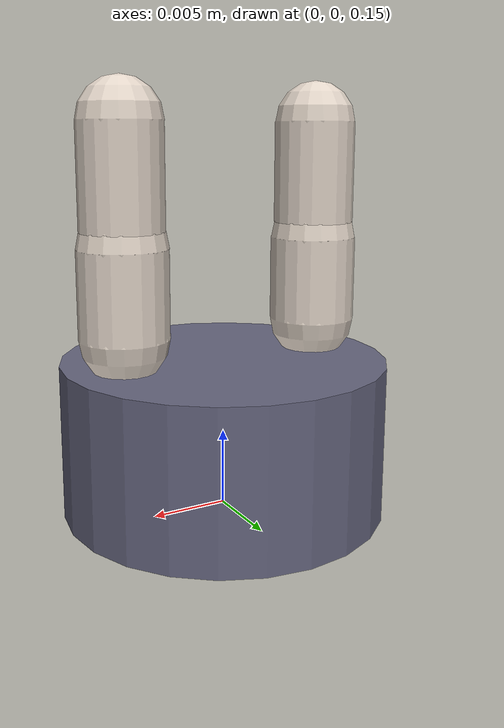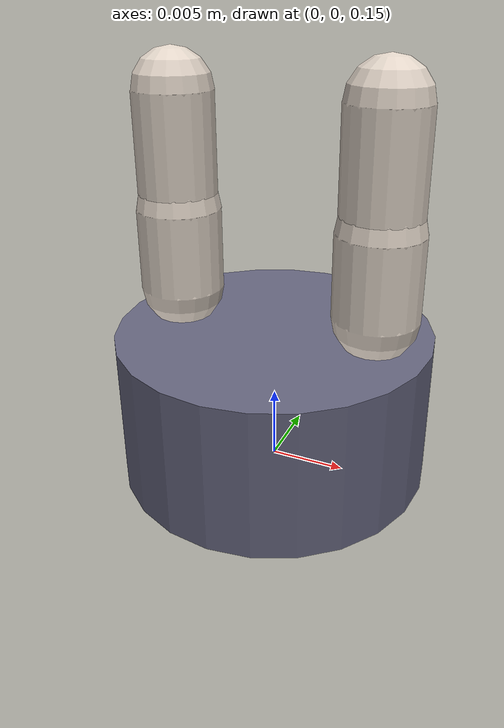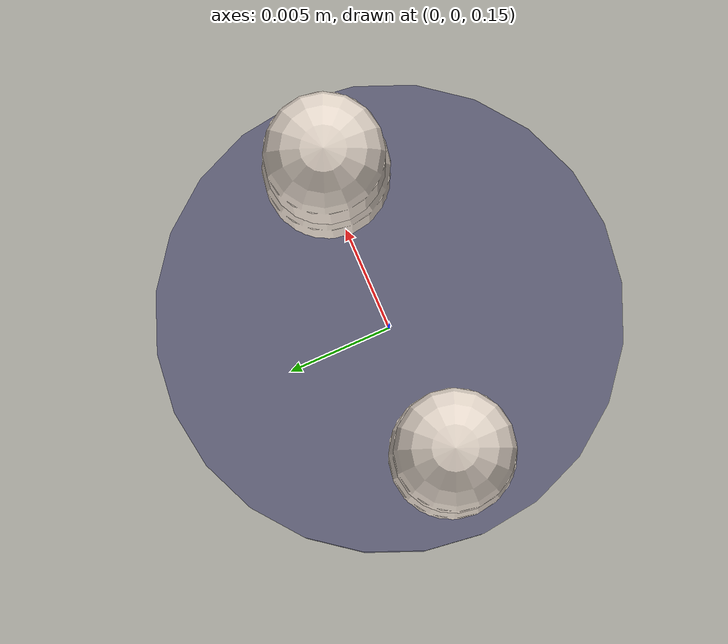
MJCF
<?xml version="1.0" encoding="utf-8"?>
<mujoco model="OF-20260129-0001">
  <compiler angle="radian" autolimits="true" meshdir="meshes"/>
  <option timestep="0.002" iterations="50" solver="Newton" tolerance="1e-10">
    <flag warmstart="enable"/>
  </option>
  <default>
    <default class="gripper">
      <geom type="capsule" condim="4" friction="0.8 0.005 0.0001" rgba="0.9 0.85 0.8 1" margin="0.001"/>
      <joint type="hinge" limited="true" range="-1.57 1.57" stiffness="0.02" damping="0.15" armature="0.001"/>
    </default>
    <default class="palm"><geom type="cylinder" rgba="0.4 0.4 0.5 1" friction="0.8 0.005 0.0001"/>
    </default>
  </default>
  <worldbody>
    <geom name="ground" type="plane" size="0.5 0.5 0.1" condim="3"/>
    <light pos="0 0 1.5" dir="0 0 -1" directional="true"/>
    <body name="palm" pos="0 0 0.15">
      <geom class="palm" name="palm_geom" size="0.0105 0.0050" pos="0 0 0.0050" />
      <body name="finger_0_base" pos="0.0068 0.0000 0.0100">
        <joint class="gripper" name="finger_0_base_joint" axis="0 1 0" stiffness="0.0200" damping="0.1500"/>
        <site name="finger_0_site_0" pos="0 0 0.002" size="0.002"/>
        <geom class="gripper" name="finger_0_seg_0" fromto="0 0 0.0020 0 0 0.0075" size="0.0028" />
        <body name="finger_0_seg_1" pos="0 0 0.0075">
          <joint class="gripper" name="finger_0_joint_1" axis="0 1 0" stiffness="0.0170" damping="0.1200"/>
          <geom class="gripper" name="finger_0_seg_1_geom" fromto="0 0 0.001 0 0 0.0075" size="0.0026" />
          <site name="finger_0_site_1" pos="0 0 0.0037" size="0.002"/>
        </body>
        <body name="finger_0_seg_2" pos="0 0 0.0075">
          <joint class="gripper" name="finger_0_joint_2" axis="0 1 0" stiffness="0.0140" damping="0.0900"/>
          <geom class="gripper" name="finger_0_seg_2_geom" fromto="0 0 0.001 0 0 0.0075" size="0.0023" />
          <site name="finger_0_site_2" pos="0 0 0.0037" size="0.002"/>
        </body>
        <body name="finger_0_seg_3" pos="0 0 0.0075">
          <joint class="gripper" name="finger_0_joint_3" axis="0 1 0" stiffness="0.0110" damping="0.0600"/>
          <geom class="gripper" name="finger_0_seg_3_geom" fromto="0 0 0.001 0 0 0.0075" size="0.0020" />
          <site name="finger_0_site_3" pos="0 0 0.0037" size="0.002"/>
        </body>
      </body>
      <body name="finger_1_base" pos="-0.0068 0.0000 0.0100">
        <joint class="gripper" name="finger_1_base_joint" axis="0 1 0" stiffness="0.0200" damping="0.1500"/>
        <site name="finger_1_site_0" pos="0 0 0.002" size="0.002"/>
        <geom class="gripper" name="finger_1_seg_0" fromto="0 0 0.0020 0 0 0.0075" size="0.0028" />
        <body name="finger_1_seg_1" pos="0 0 0.0075">
          <joint class="gripper" name="finger_1_joint_1" axis="0 1 0" stiffness="0.0170" damping="0.1200"/>
          <geom class="gripper" name="finger_1_seg_1_geom" fromto="0 0 0.001 0 0 0.0075" size="0.0026" />
          <site name="finger_1_site_1" pos="0 0 0.0037" size="0.002"/>
        </body>
        <body name="finger_1_seg_2" pos="0 0 0.0075">
          <joint class="gripper" name="finger_1_joint_2" axis="0 1 0" stiffness="0.0140" damping="0.0900"/>
          <geom class="gripper" name="finger_1_seg_2_geom" fromto="0 0 0.001 0 0 0.0075" size="0.0023" />
          <site name="finger_1_site_2" pos="0 0 0.0037" size="0.002"/>
        </body>
        <body name="finger_1_seg_3" pos="0 0 0.0075">
          <joint class="gripper" name="finger_1_joint_3" axis="0 1 0" stiffness="0.0110" damping="0.0600"/>
          <geom class="gripper" name="finger_1_seg_3_geom" fromto="0 0 0.001 0 0 0.0075" size="0.0020" />
          <site name="finger_1_site_3" pos="0 0 0.0037" size="0.002"/>
        </body>
      </body>
    </body>
  </worldbody>
  <tendon>
    <spatial name="finger_0_flexor" limited="true" range="0 0.15" width="0.002" frictionloss="0.1">
      <site site="finger_0_site_0"/>
      <site site="finger_0_site_1"/>
      <site site="finger_0_site_2"/>
      <site site="finger_0_site_3"/>
    </spatial>
    <spatial name="finger_0_extensor" limited="true" range="0 0.15" width="0.002" frictionloss="0.1">
      <site site="finger_0_site_3"/>
      <site site="finger_0_site_2"/>
      <site site="finger_0_site_1"/>
      <site site="finger_0_site_0"/>
    </spatial>
    <spatial name="finger_1_flexor" limited="true" range="0 0.15" width="0.002" frictionloss="0.1">
      <site site="finger_1_site_0"/>
      <site site="finger_1_site_1"/>
      <site site="finger_1_site_2"/>
      <site site="finger_1_site_3"/>
    </spatial>
    <spatial name="finger_1_extensor" limited="true" range="0 0.15" width="0.002" frictionloss="0.1">
      <site site="finger_1_site_3"/>
      <site site="finger_1_site_2"/>
      <site site="finger_1_site_1"/>
      <site site="finger_1_site_0"/>
    </spatial>
  </tendon>
  <actuator>
    <motor name="finger_0_flexor_motor" tendon="finger_0_flexor" gear="30" ctrllimited="true" ctrlrange="0 1"/>
    <motor name="finger_0_extensor_motor" tendon="finger_0_extensor" gear="15" ctrllimited="true" ctrlrange="0 0.5"/>
    <motor name="finger_1_flexor_motor" tendon="finger_1_flexor" gear="30" ctrllimited="true" ctrlrange="0 1"/>
    <motor name="finger_1_extensor_motor" tendon="finger_1_extensor" gear="15" ctrllimited="true" ctrlrange="0 0.5"/>
  </actuator>
  <sensor>
    <jointpos name="finger_0_pos" joint="finger_0_base_joint"/>
    <jointvel name="finger_0_vel" joint="finger_0_base_joint"/>
    <tendonpos name="finger_0_flexor_len" tendon="finger_0_flexor"/>
    <jointpos name="finger_1_pos" joint="finger_1_base_joint"/>
    <jointvel name="finger_1_vel" joint="finger_1_base_joint"/>
    <tendonpos name="finger_1_flexor_len" tendon="finger_1_flexor"/>
  </sensor>
</mujoco>
